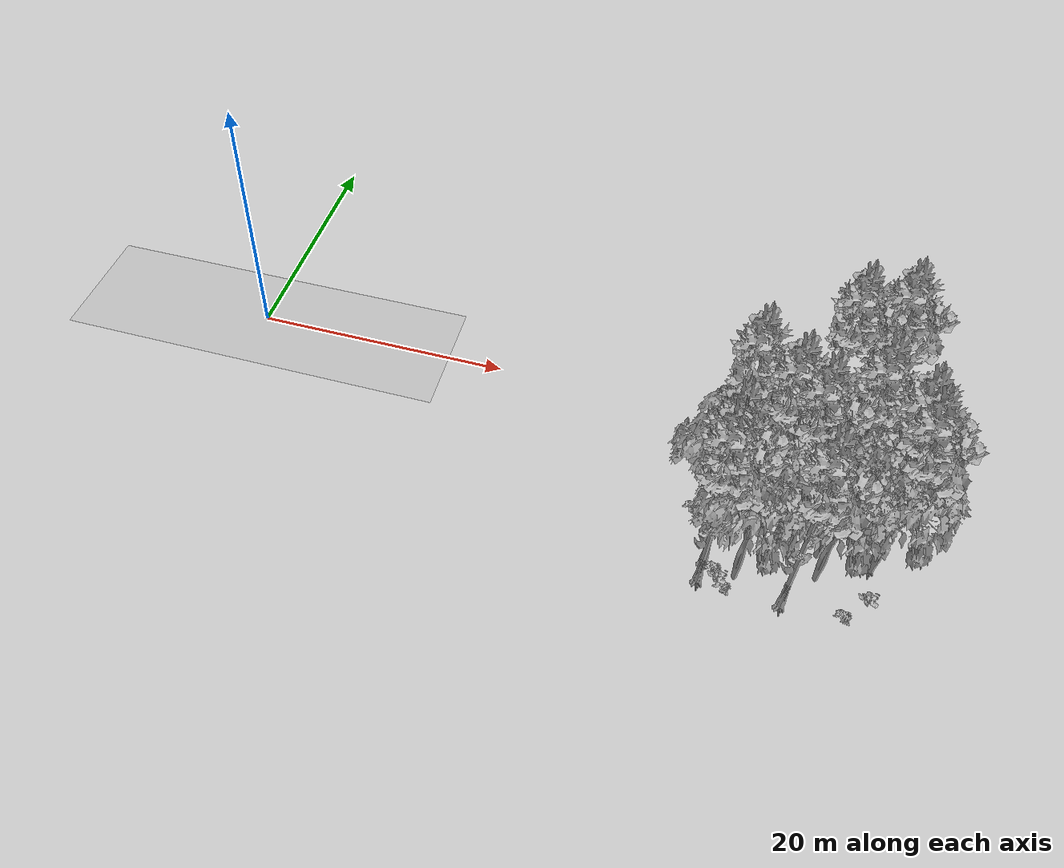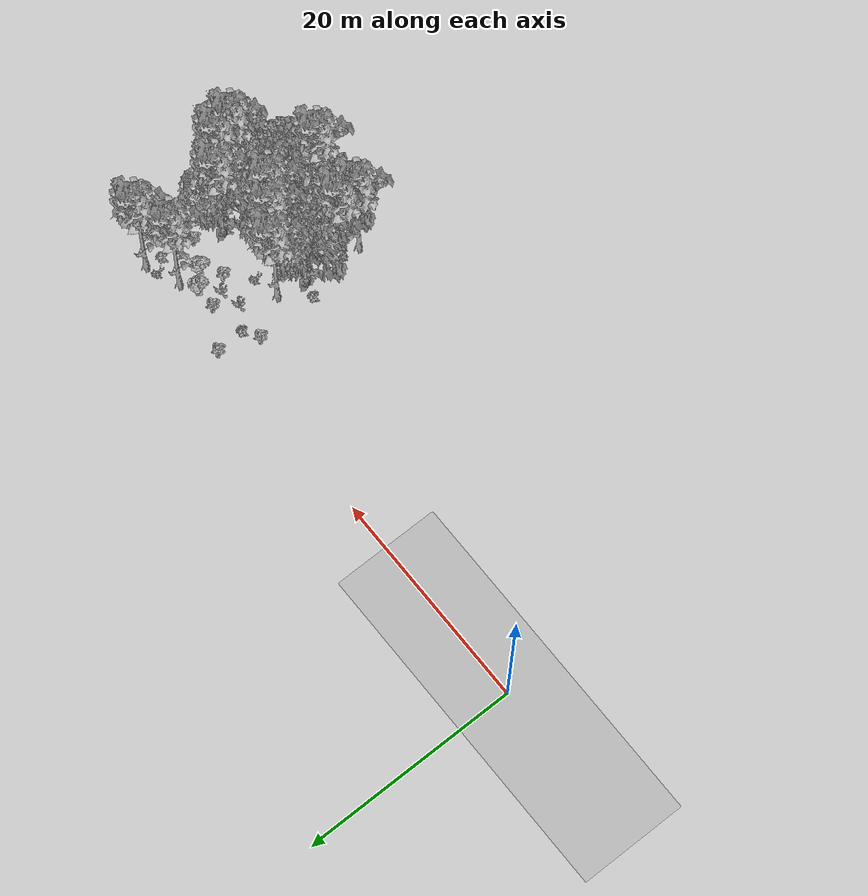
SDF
<sdf version="1.7">
 <world name="default">
  <model name="ground_plane">
   <static>1</static>
   <link name="link">
    <collision name="collision">
     <geometry><plane><normal>0 0 1</normal><size>100 100</size></plane></geometry>
     <surface><contact><ode><min_depth>0.01</min_depth><max_vel>0</max_vel></ode></contact></surface>
    </collision>
    <visual name="grass">
     <cast_shadows>0</cast_shadows>
     <geometry>
      <mesh>
       <scale>0.5814285714285714 0.18142857142857144 0.1</scale>
       <uri>file://grass_plane/meshes/grass_plane.dae</uri>
      </mesh>
     </geometry>
    </visual>
   </link>
  </model>
  <model name="Tree 49">
   <static>1</static>
   <pose>45.80509630683392 -6.78505157625351 0 1.57079 -0 0</pose>
   <link name="link">
    <collision name="collision">
     <geometry><mesh><scale>3.5 5 3.5</scale><uri>model://tree_9/meshes/tree_9.obj</uri></mesh></geometry>
    </collision>
    <visual name="visual">
     <geometry><mesh><scale>3.5 5 3.5</scale><uri>model://tree_9/meshes/tree_9.obj</uri></mesh></geometry>
    </visual>
   </link>
  </model>
  <model name="Tree 79">
   <static>1</static>
   <pose>45.41057414228328 -6.605791937771512 0 1.57079 -0 0</pose>
   <link name="link">
    <collision name="collision">
     <geometry><mesh><scale>3.5 5 3.5</scale><uri>model://tree_2/meshes/tree_2.obj</uri></mesh></geometry>
    </collision>
    <visual name="visual">
     <geometry><mesh><scale>3.5 5 3.5</scale><uri>model://tree_2/meshes/tree_2.obj</uri></mesh></geometry>
    </visual>
   </link>
  </model>
  <model name="Tree 105">
   <static>1</static>
   <pose>48.50787520896945 -10.410158751523007 0 1.57079 -0 0</pose>
   <link name="link">
    <collision name="collision">
     <geometry><mesh><scale>3.5 5 3.5</scale><uri>model://tree_9/meshes/tree_9.obj</uri></mesh></geometry>
    </collision>
    <visual name="visual">
     <geometry><mesh><scale>3.5 5 3.5</scale><uri>model://tree_9/meshes/tree_9.obj</uri></mesh></geometry>
    </visual>
   </link>
  </model>
  <model name="Tree 121">
   <static>1</static>
   <pose>37.52682591603485 -14.586535242468319 0 1.57079 -0 0</pose>
   <link name="link">
    <collision name="collision">
     <geometry><mesh><scale>3.5 5 3.5</scale><uri>model://tree_9/meshes/tree_9.obj</uri></mesh></geometry>
    </collision>
    <visual name="visual">
     <geometry><mesh><scale>3.5 5 3.5</scale><uri>model://tree_9/meshes/tree_9.obj</uri></mesh></geometry>
    </visual>
   </link>
  </model>
  <model name="Tree 143">
   <static>1</static>
   <pose>44.95213696150486 -10.430295675073323 0 1.57079 -0 0</pose>
   <link name="link">
    <collision name="collision">
     <geometry><mesh><scale>3.5 5 3.5</scale><uri>model://tree_2/meshes/tree_2.obj</uri></mesh></geometry>
    </collision>
    <visual name="visual">
     <geometry><mesh><scale>3.5 5 3.5</scale><uri>model://tree_2/meshes/tree_2.obj</uri></mesh></geometry>
    </visual>
   </link>
  </model>
  <model name="Tree 158">
   <static>1</static>
   <pose>40.75991198321171 -8.31611321343585 0 1.57079 -0 0</pose>
   <link name="link">
    <collision name="collision">
     <geometry><mesh><scale>3.5 5 3.5</scale><uri>model://tree_9/meshes/tree_9.obj</uri></mesh></geometry>
    </collision>
    <visual name="visual">
     <geometry><mesh><scale>3.5 5 3.5</scale><uri>model://tree_9/meshes/tree_9.obj</uri></mesh></geometry>
    </visual>
   </link>
  </model>
  <model name="Tree 197">
   <static>1</static>
   <pose>42.98966652795575 -14.909645170963637 0 1.57079 -0 0</pose>
   <link name="link">
    <collision name="collision">
     <geometry><mesh><scale>3.5 5 3.5</scale><uri>model://tree_9/meshes/tree_9.obj</uri></mesh></geometry>
    </collision>
    <visual name="visual">
     <geometry><mesh><scale>3.5 5 3.5</scale><uri>model://tree_9/meshes/tree_9.obj</uri></mesh></geometry>
    </visual>
   </link>
  </model>
  <model name="Tree 253">
   <static>1</static>
   <pose>37.77464471192906 -9.179495244215808 0 1.57079 -0 0</pose>
   <link name="link">
    <collision name="collision">
     <geometry><mesh><scale>3.5 5 3.5</scale><uri>model://tree_2/meshes/tree_2.obj</uri></mesh></geometry>
    </collision>
    <visual name="visual">
     <geometry><mesh><scale>3.5 5 3.5</scale><uri>model://tree_2/meshes/tree_2.obj</uri></mesh></geometry>
    </visual>
   </link>
  </model>
  <model name="Tree 304">
   <static>1</static>
   <pose>48.51293157631203 -10.623789190434351 0 1.57079 -0 0</pose>
   <link name="link">
    <collision name="collision">
     <geometry><mesh><scale>3.5 5 3.5</scale><uri>model://tree_2/meshes/tree_2.obj</uri></mesh></geometry>
    </collision>
    <visual name="visual">
     <geometry><mesh><scale>3.5 5 3.5</scale><uri>model://tree_2/meshes/tree_2.obj</uri></mesh></geometry>
    </visual>
   </link>
  </model>
  <model name="Tree 305">
   <static>1</static>
   <pose>44.97408393509063 -12.271342573441292 0 1.57079 -0 0</pose>
   <link name="link">
    <collision name="collision">
     <geometry><mesh><scale>3.5 5 3.5</scale><uri>model://tree_2/meshes/tree_2.obj</uri></mesh></geometry>
    </collision>
    <visual name="visual">
     <geometry><mesh><scale>3.5 5 3.5</scale><uri>model://tree_2/meshes/tree_2.obj</uri></mesh></geometry>
    </visual>
   </link>
  </model>
  <model name="Tree 318">
   <static>1</static>
   <pose>48.13695880161828 -8.790665307443012 0 1.57079 -0 0</pose>
   <link name="link">
    <collision name="collision">
     <geometry><mesh><scale>3.5 5 3.5</scale><uri>model://tree_9/meshes/tree_9.obj</uri></mesh></geometry>
    </collision>
    <visual name="visual">
     <geometry><mesh><scale>3.5 5 3.5</scale><uri>model://tree_9/meshes/tree_9.obj</uri></mesh></geometry>
    </visual>
   </link>
  </model>
  <model name="Tree 340">
   <static>1</static>
   <pose>39.7660164379448 -13.68394267165544 0 1.57079 -0 0</pose>
   <link name="link">
    <collision name="collision">
     <geometry><mesh><scale>3.5 5 3.5</scale><uri>model://tree_2/meshes/tree_2.obj</uri></mesh></geometry>
    </collision>
    <visual name="visual">
     <geometry><mesh><scale>3.5 5 3.5</scale><uri>model://tree_2/meshes/tree_2.obj</uri></mesh></geometry>
    </visual>
   </link>
  </model>
  <model name="Tree 358">
   <static>1</static>
   <pose>38.30290802384562 -6.595683431905382 0 1.57079 -0 0</pose>
   <link name="link">
    <collision name="collision">
     <geometry><mesh><scale>3.5 5 3.5</scale><uri>model://tree_9/meshes/tree_9.obj</uri></mesh></geometry>
    </collision>
    <visual name="visual">
     <geometry><mesh><scale>3.5 5 3.5</scale><uri>model://tree_9/meshes/tree_9.obj</uri></mesh></geometry>
    </visual>
   </link>
  </model>
  <model name="Tree 369">
   <static>1</static>
   <pose>42.40556368403017 -9.472843283502133 0 1.57079 -0 0</pose>
   <link name="link">
    <collision name="collision">
     <geometry><mesh><scale>3.5 5 3.5</scale><uri>model://tree_9/meshes/tree_9.obj</uri></mesh></geometry>
    </collision>
    <visual name="visual">
     <geometry><mesh><scale>3.5 5 3.5</scale><uri>model://tree_9/meshes/tree_9.obj</uri></mesh></geometry>
    </visual>
   </link>
  </model>
  <model name="Tree 380">
   <static>1</static>
   <pose>44.18550958019216 -0.8998294183523932 0 1.57079 -0 0</pose>
   <link name="link">
    <collision name="collision">
     <geometry><mesh><scale>3.5 5 3.5</scale><uri>model://tree_9/meshes/tree_9.obj</uri></mesh></geometry>
    </collision>
    <visual name="visual">
     <geometry><mesh><scale>3.5 5 3.5</scale><uri>model://tree_9/meshes/tree_9.obj</uri></mesh></geometry>
    </visual>
   </link>
  </model>
  <model name="Tree 385">
   <static>1</static>
   <pose>39.83634426077364 -8.741463001065053 0 1.57079 -0 0</pose>
   <link name="link">
    <collision name="collision">
     <geometry><mesh><scale>3.5 5 3.5</scale><uri>model://tree_2/meshes/tree_2.obj</uri></mesh></geometry>
    </collision>
    <visual name="visual">
     <geometry><mesh><scale>3.5 5 3.5</scale><uri>model://tree_2/meshes/tree_2.obj</uri></mesh></geometry>
    </visual>
   </link>
  </model>
  <model name="Tree 398">
   <static>1</static>
   <pose>47.19390200855574 0.28267283055987846 0 1.57079 -0 0</pose>
   <link name="link">
    <collision name="collision">
     <geometry><mesh><scale>3.5 5 3.5</scale><uri>model://tree_9/meshes/tree_9.obj</uri></mesh></geometry>
    </collision>
    <visual name="visual">
     <geometry><mesh><scale>3.5 5 3.5</scale><uri>model://tree_9/meshes/tree_9.obj</uri></mesh></geometry>
    </visual>
   </link>
  </model>
  <model name="Tree 433">
   <static>1</static>
   <pose>37.72396846053414 -13.065431914485103 0 1.57079 -0 0</pose>
   <link name="link">
    <collision name="collision">
     <geometry><mesh><scale>3.5 5 3.5</scale><uri>model://tree_9/meshes/tree_9.obj</uri></mesh></geometry>
    </collision>
    <visual name="visual">
     <geometry><mesh><scale>3.5 5 3.5</scale><uri>model://tree_9/meshes/tree_9.obj</uri></mesh></geometry>
    </visual>
   </link>
  </model>
  <model name="Bush 13">
   <static>1</static>
   <pose>42.619211882050024 -4.21824409530552 0 1.57079 -0 0</pose>
   <link name="link">
    <collision name="collision">
     <geometry><mesh><scale>2 2 2</scale><uri>model://bush_3/meshes/bush_3.obj</uri></mesh></geometry>
     <surface><contact><collide_without_contact>false</collide_without_contact></contact></surface>
    </collision>
    <visual name="visual">
     <geometry><mesh><scale>2 2 2</scale><uri>model://bush_3/meshes/bush_3.obj</uri></mesh></geometry>
    </visual>
   </link>
  </model>
  <model name="Bush 38">
   <static>1</static>
   <pose>37.601977605734774 -2.4159623976227156 0 1.57079 -0 0</pose>
   <link name="link">
    <collision name="collision">
     <geometry><mesh><scale>2 2 2</scale><uri>model://bush_2/meshes/bush_2.obj</uri></mesh></geometry>
     <surface><contact><collide_without_contact>false</collide_without_contact></contact></surface>
    </collision>
    <visual name="visual">
     <geometry><mesh><scale>2 2 2</scale><uri>model://bush_2/meshes/bush_2.obj</uri></mesh></geometry>
    </visual>
   </link>
  </model>
  <model name="Bush 45">
   <static>1</static>
   <pose>48.28573224332254 -2.475363121031041 0 1.57079 -0 0</pose>
   <link name="link">
    <collision name="collision">
     <geometry><mesh><scale>2 2 2</scale><uri>model://bush_2/meshes/bush_2.obj</uri></mesh></geometry>
     <surface><contact><collide_without_contact>false</collide_without_contact></contact></surface>
    </collision>
    <visual name="visual">
     <geometry><mesh><scale>2 2 2</scale><uri>model://bush_2/meshes/bush_2.obj</uri></mesh></geometry>
    </visual>
   </link>
  </model>
  <model name="Bush 81">
   <static>1</static>
   <pose>46.928036723804766 -1.2069957463728738 0 1.57079 -0 0</pose>
   <link name="link">
    <collision name="collision">
     <geometry><mesh><scale>2 2 2</scale><uri>model://bush_2/meshes/bush_2.obj</uri></mesh></geometry>
     <surface><contact><collide_without_contact>false</collide_without_contact></contact></surface>
    </collision>
    <visual name="visual">
     <geometry><mesh><scale>2 2 2</scale><uri>model://bush_2/meshes/bush_2.obj</uri></mesh></geometry>
    </visual>
   </link>
  </model>
  <model name="Bush 82">
   <static>1</static>
   <pose>40.96102457009175 -1.8391141912857005 0 1.57079 -0 0</pose>
   <link name="link">
    <collision name="collision">
     <geometry><mesh><scale>2 2 2</scale><uri>model://bush_3/meshes/bush_3.obj</uri></mesh></geometry>
     <surface><contact><collide_without_contact>false</collide_without_contact></contact></surface>
    </collision>
    <visual name="visual">
     <geometry><mesh><scale>2 2 2</scale><uri>model://bush_3/meshes/bush_3.obj</uri></mesh></geometry>
    </visual>
   </link>
  </model>
  <model name="Bush 96">
   <static>1</static>
   <pose>45.43875857189303 -7.079073222510688 0 1.57079 -0 0</pose>
   <link name="link">
    <collision name="collision">
     <geometry><mesh><scale>2 2 2</scale><uri>model://bush_4/meshes/bush_4.obj</uri></mesh></geometry>
     <surface><contact><collide_without_contact>false</collide_without_contact></contact></surface>
    </collision>
    <visual name="visual">
     <geometry><mesh><scale>2 2 2</scale><uri>model://bush_4/meshes/bush_4.obj</uri></mesh></geometry>
    </visual>
   </link>
  </model>
  <model name="Bush 103">
   <static>1</static>
   <pose>37.53587741468803 0.22337674331800805 0 1.57079 -0 0</pose>
   <link name="link">
    <collision name="collision">
     <geometry><mesh><scale>2 2 2</scale><uri>model://bush_3/meshes/bush_3.obj</uri></mesh></geometry>
     <surface><contact><collide_without_contact>false</collide_without_contact></contact></surface>
    </collision>
    <visual name="visual">
     <geometry><mesh><scale>2 2 2</scale><uri>model://bush_3/meshes/bush_3.obj</uri></mesh></geometry>
    </visual>
   </link>
  </model>
  <model name="Bush 106">
   <static>1</static>
   <pose>46.98193077517627 -14.649309298676206 0 1.57079 -0 0</pose>
   <link name="link">
    <collision name="collision">
     <geometry><mesh><scale>2 2 2</scale><uri>model://bush_2/meshes/bush_2.obj</uri></mesh></geometry>
     <surface><contact><collide_without_contact>false</collide_without_contact></contact></surface>
    </collision>
    <visual name="visual">
     <geometry><mesh><scale>2 2 2</scale><uri>model://bush_2/meshes/bush_2.obj</uri></mesh></geometry>
    </visual>
   </link>
  </model>
  <model name="Bush 110">
   <static>1</static>
   <pose>36.32567644321014 -8.891754704108848 0 1.57079 -0 0</pose>
   <link name="link">
    <collision name="collision">
     <geometry><mesh><scale>2 2 2</scale><uri>model://bush_2/meshes/bush_2.obj</uri></mesh></geometry>
     <surface><contact><collide_without_contact>false</collide_without_contact></contact></surface>
    </collision>
    <visual name="visual">
     <geometry><mesh><scale>2 2 2</scale><uri>model://bush_2/meshes/bush_2.obj</uri></mesh></geometry>
    </visual>
   </link>
  </model>
  <model name="Bush 142">
   <static>1</static>
   <pose>42.86435840059961 -1.9815254562755822 0 1.57079 -0 0</pose>
   <link name="link">
    <collision name="collision">
     <geometry><mesh><scale>2 2 2</scale><uri>model://bush_1/meshes/bush_1.obj</uri></mesh></geometry>
     <surface><contact><collide_without_contact>false</collide_without_contact></contact></surface>
    </collision>
    <visual name="visual">
     <geometry><mesh><scale>2 2 2</scale><uri>model://bush_1/meshes/bush_1.obj</uri></mesh></geometry>
    </visual>
   </link>
  </model>
  <model name="Bush 160">
   <static>1</static>
   <pose>43.865189976936364 -8.859055076459793 0 1.57079 -0 0</pose>
   <link name="link">
    <collision name="collision">
     <geometry><mesh><scale>2 2 2</scale><uri>model://bush_2/meshes/bush_2.obj</uri></mesh></geometry>
     <surface><contact><collide_without_contact>false</collide_without_contact></contact></surface>
    </collision>
    <visual name="visual">
     <geometry><mesh><scale>2 2 2</scale><uri>model://bush_2/meshes/bush_2.obj</uri></mesh></geometry>
    </visual>
   </link>
  </model>
  <model name="Bush 177">
   <static>1</static>
   <pose>47.00452350918985 -8.045305946011641 0 1.57079 -0 0</pose>
   <link name="link">
    <collision name="collision">
     <geometry><mesh><scale>2 2 2</scale><uri>model://bush_2/meshes/bush_2.obj</uri></mesh></geometry>
     <surface><contact><collide_without_contact>false</collide_without_contact></contact></surface>
    </collision>
    <visual name="visual">
     <geometry><mesh><scale>2 2 2</scale><uri>model://bush_2/meshes/bush_2.obj</uri></mesh></geometry>
    </visual>
   </link>
  </model>
  <model name="Bush 179">
   <static>1</static>
   <pose>41.30702034368194 -3.1882201619659334 0 1.57079 -0 0</pose>
   <link name="link">
    <collision name="collision">
     <geometry><mesh><scale>2 2 2</scale><uri>model://bush_4/meshes/bush_4.obj</uri></mesh></geometry>
     <surface><contact><collide_without_contact>false</collide_without_contact></contact></surface>
    </collision>
    <visual name="visual">
     <geometry><mesh><scale>2 2 2</scale><uri>model://bush_4/meshes/bush_4.obj</uri></mesh></geometry>
    </visual>
   </link>
  </model>
  <model name="Bush 186">
   <static>1</static>
   <pose>48.4792296761197 -13.33937505138759 0 1.57079 -0 0</pose>
   <link name="link">
    <collision name="collision">
     <geometry><mesh><scale>2 2 2</scale><uri>model://bush_0/meshes/bush_0.obj</uri></mesh></geometry>
     <surface><contact><collide_without_contact>false</collide_without_contact></contact></surface>
    </collision>
    <visual name="visual">
     <geometry><mesh><scale>2 2 2</scale><uri>model://bush_0/meshes/bush_0.obj</uri></mesh></geometry>
    </visual>
   </link>
  </model>
  <model name="Bush 223">
   <static>1</static>
   <pose>39.1964675594558 -14.678948876559135 0 1.57079 -0 0</pose>
   <link name="link">
    <collision name="collision">
     <geometry><mesh><scale>2 2 2</scale><uri>model://bush_2/meshes/bush_2.obj</uri></mesh></geometry>
     <surface><contact><collide_without_contact>false</collide_without_contact></contact></surface>
    </collision>
    <visual name="visual">
     <geometry><mesh><scale>2 2 2</scale><uri>model://bush_2/meshes/bush_2.obj</uri></mesh></geometry>
    </visual>
   </link>
  </model>
  <model name="Bush 249">
   <static>1</static>
   <pose>47.331774384621994 -7.102298490094815 0 1.57079 -0 0</pose>
   <link name="link">
    <collision name="collision">
     <geometry><mesh><scale>2 2 2</scale><uri>model://bush_5/meshes/bush_5.obj</uri></mesh></geometry>
     <surface><contact><collide_without_contact>false</collide_without_contact></contact></surface>
    </collision>
    <visual name="visual">
     <geometry><mesh><scale>2 2 2</scale><uri>model://bush_5/meshes/bush_5.obj</uri></mesh></geometry>
    </visual>
   </link>
  </model>
  <model name="Bush 253">
   <static>1</static>
   <pose>39.4559628793175 -3.608460426477084 0 1.57079 -0 0</pose>
   <link name="link">
    <collision name="collision">
     <geometry><mesh><scale>2 2 2</scale><uri>model://bush_4/meshes/bush_4.obj</uri></mesh></geometry>
     <surface><contact><collide_without_contact>false</collide_without_contact></contact></surface>
    </collision>
    <visual name="visual">
     <geometry><mesh><scale>2 2 2</scale><uri>model://bush_4/meshes/bush_4.obj</uri></mesh></geometry>
    </visual>
   </link>
  </model>
  <model name="Bush 256">
   <static>1</static>
   <pose>39.62577302784658 -7.817647589890391 0 1.57079 -0 0</pose>
   <link name="link">
    <collision name="collision">
     <geometry><mesh><scale>2 2 2</scale><uri>model://bush_2/meshes/bush_2.obj</uri></mesh></geometry>
     <surface><contact><collide_without_contact>false</collide_without_contact></contact></surface>
    </collision>
    <visual name="visual">
     <geometry><mesh><scale>2 2 2</scale><uri>model://bush_2/meshes/bush_2.obj</uri></mesh></geometry>
    </visual>
   </link>
  </model>
  <model name="Bush 262">
   <static>1</static>
   <pose>36.3096171185599 -3.235812192059978 0 1.57079 -0 0</pose>
   <link name="link">
    <collision name="collision">
     <geometry><mesh><scale>2 2 2</scale><uri>model://bush_3/meshes/bush_3.obj</uri></mesh></geometry>
     <surface><contact><collide_without_contact>false</collide_without_contact></contact></surface>
    </collision>
    <visual name="visual">
     <geometry><mesh><scale>2 2 2</scale><uri>model://bush_3/meshes/bush_3.obj</uri></mesh></geometry>
    </visual>
   </link>
  </model>
  <model name="Bush 264">
   <static>1</static>
   <pose>38.85495299051746 -14.41381951340629 0 1.57079 -0 0</pose>
   <link name="link">
    <collision name="collision">
     <geometry><mesh><scale>2 2 2</scale><uri>model://bush_0/meshes/bush_0.obj</uri></mesh></geometry>
     <surface><contact><collide_without_contact>false</collide_without_contact></contact></surface>
    </collision>
    <visual name="visual">
     <geometry><mesh><scale>2 2 2</scale><uri>model://bush_0/meshes/bush_0.obj</uri></mesh></geometry>
    </visual>
   </link>
  </model>
  <model name="Bush 295">
   <static>1</static>
   <pose>45.70804777625331 0.29239228543390183 0 1.57079 -0 0</pose>
   <link name="link">
    <collision name="collision">
     <geometry><mesh><scale>2 2 2</scale><uri>model://bush_5/meshes/bush_5.obj</uri></mesh></geometry>
     <surface><contact><collide_without_contact>false</collide_without_contact></contact></surface>
    </collision>
    <visual name="visual">
     <geometry><mesh><scale>2 2 2</scale><uri>model://bush_5/meshes/bush_5.obj</uri></mesh></geometry>
    </visual>
   </link>
  </model>
  <model name="Bush 296">
   <static>1</static>
   <pose>44.21328897847769 -3.1404157132337236 0 1.57079 -0 0</pose>
   <link name="link">
    <collision name="collision">
     <geometry><mesh><scale>2 2 2</scale><uri>model://bush_1/meshes/bush_1.obj</uri></mesh></geometry>
     <surface><contact><collide_without_contact>false</collide_without_contact></contact></surface>
    </collision>
    <visual name="visual">
     <geometry><mesh><scale>2 2 2</scale><uri>model://bush_1/meshes/bush_1.obj</uri></mesh></geometry>
    </visual>
   </link>
  </model>
  <model name="Bush 297">
   <static>1</static>
   <pose>38.40758193383135 -13.42813844795477 0 1.57079 -0 0</pose>
   <link name="link">
    <collision name="collision">
     <geometry><mesh><scale>2 2 2</scale><uri>model://bush_2/meshes/bush_2.obj</uri></mesh></geometry>
     <surface><contact><collide_without_contact>false</collide_without_contact></contact></surface>
    </collision>
    <visual name="visual">
     <geometry><mesh><scale>2 2 2</scale><uri>model://bush_2/meshes/bush_2.obj</uri></mesh></geometry>
    </visual>
   </link>
  </model>
  <model name="Bush 300">
   <static>1</static>
   <pose>46.653262586067356 -4.227792390534852 0 1.57079 -0 0</pose>
   <link name="link">
    <collision name="collision">
     <geometry><mesh><scale>2 2 2</scale><uri>model://bush_3/meshes/bush_3.obj</uri></mesh></geometry>
     <surface><contact><collide_without_contact>false</collide_without_contact></contact></surface>
    </collision>
    <visual name="visual">
     <geometry><mesh><scale>2 2 2</scale><uri>model://bush_3/meshes/bush_3.obj</uri></mesh></geometry>
    </visual>
   </link>
  </model>
  <model name="Bush 308">
   <static>1</static>
   <pose>40.26563894412594 -5.69617864521345 0 1.57079 -0 0</pose>
   <link name="link">
    <collision name="collision">
     <geometry><mesh><scale>2 2 2</scale><uri>model://bush_5/meshes/bush_5.obj</uri></mesh></geometry>
     <surface><contact><collide_without_contact>false</collide_without_contact></contact></surface>
    </collision>
    <visual name="visual">
     <geometry><mesh><scale>2 2 2</scale><uri>model://bush_5/meshes/bush_5.obj</uri></mesh></geometry>
    </visual>
   </link>
  </model>
 </world>
</sdf>
